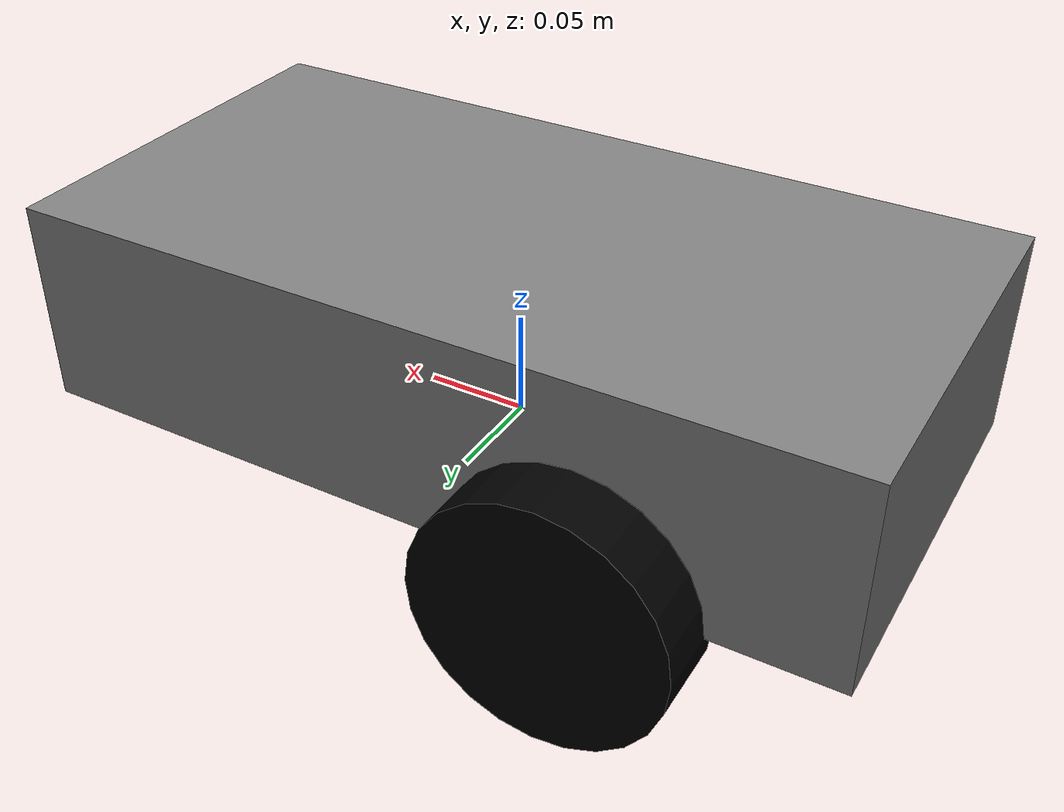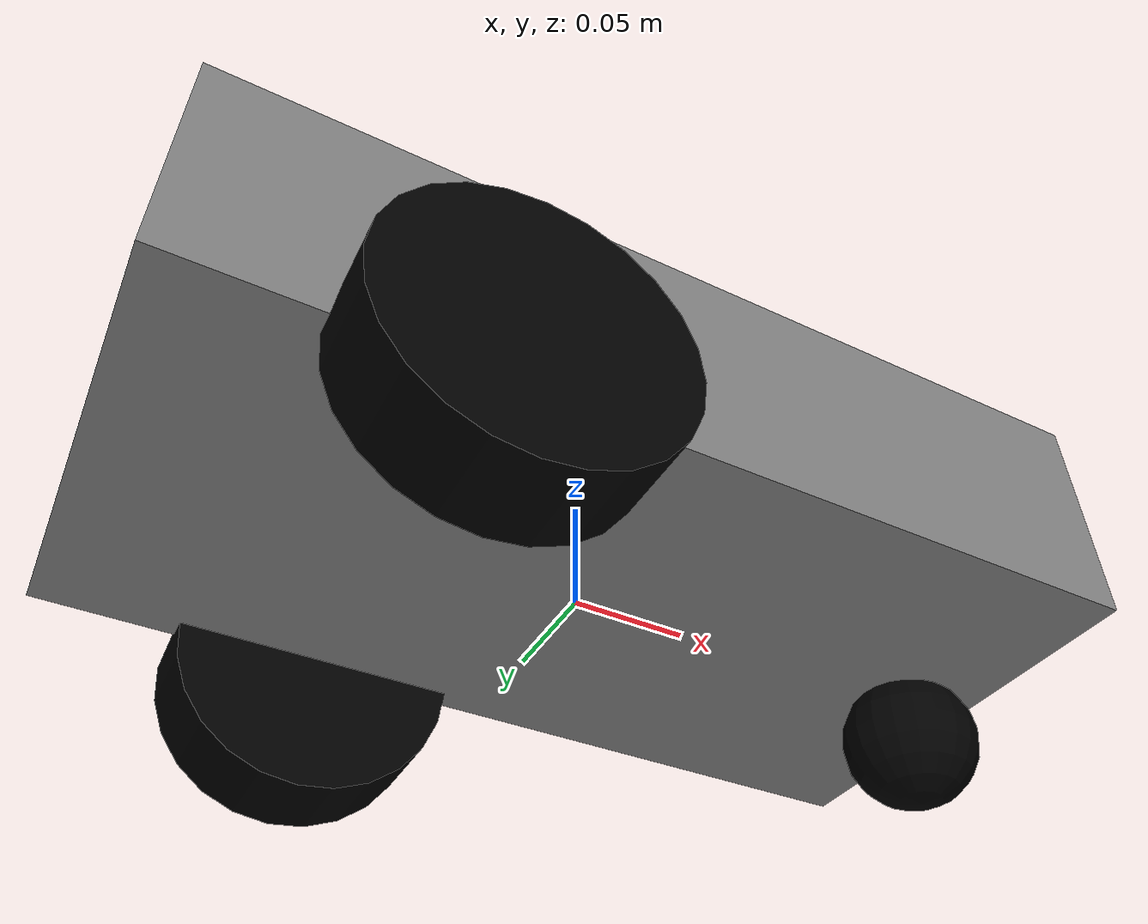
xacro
<?xml version="1.0"?>
<robot name="mobile_base" xmlns:xacro="http://www.ros.org/wiki/xacro">

  <!-- 修复根链接惯性警告 -->
  <link name="world"/>
  <joint name="world_to_base" type="fixed">
    <parent link="world"/>
    <child link="base_link"/>
    <origin xyz="0 0 0"/>
  </joint>

  <material name="gray">
    <color rgba="0.5 0.5 0.5 1"/>
  </material>
  <material name="black">
    <color rgba="0.0 0.0 0.0 1"/>
  </material>

  <link name="base_link">
    <visual>
      <geometry>
        <box size="0.4 0.2 0.1"/>
      </geometry>
      <origin xyz="0 0 0.05"/>
      <material name="gray"/>
    </visual>
    <collision>
      <geometry>
        <box size="0.4 0.2 0.1"/>
      </geometry>
      <origin xyz="0 0 0.05"/>
    </collision>
    <inertial>
      <mass value="2.0"/>
      <inertia ixx="0.01" ixy="0.0" ixz="0.0" iyy="0.02" iyz="0.0" izz="0.02"/>
    </inertial>
  </link>

  <link name="wheel_left_link">
    <visual>
      <geometry>
        <cylinder length="0.04" radius="0.06"/>
      </geometry>
      <origin rpy="1.5708 0 0"/>
      <material name="black"/>
    </visual>
    <collision>
      <geometry>
        <cylinder length="0.04" radius="0.06"/>
      </geometry>
      <origin rpy="1.5708 0 0"/>
    </collision>
    <inertial>
      <mass value="0.2"/>
      <inertia ixx="0.0002" ixy="0.0" ixz="0.0" iyy="0.0001" iyz="0.0" izz="0.0002"/>
    </inertial>
  </link>

  <link name="wheel_right_link">
    <visual>
      <geometry>
        <cylinder length="0.04" radius="0.06"/>
      </geometry>
      <origin rpy="1.5708 0 0"/>
      <material name="black"/>
    </visual>
    <collision>
      <geometry>
        <cylinder length="0.04" radius="0.06"/>
      </geometry>
      <origin rpy="1.5708 0 0"/>
    </collision>
    <inertial>
      <mass value="0.2"/>
      <inertia ixx="0.0002" ixy="0.0" ixz="0.0" iyy="0.0001" iyz="0.0" izz="0.0002"/>
    </inertial>
  </link>

  <link name="caster_link">
    <visual>
      <geometry>
        <sphere radius="0.03"/>
      </geometry>
      <material name="black"/>
    </visual>
    <collision>
      <geometry>
        <sphere radius="0.03"/>
      </geometry>
    </collision>
    <inertial>
      <mass value="0.1"/>
      <inertia ixx="0.00001" ixy="0.0" ixz="0.0" iyy="0.00001" iyz="0.0" izz="0.00001"/>
    </inertial>
  </link>

  <joint name="wheel_left_joint" type="revolute">
    <parent link="base_link"/>
    <child link="wheel_left_link"/>
    <origin xyz="-0.08 -0.11 0"/>
    <axis xyz="0 1 0"/>
    <limit effort="100" lower="-1e16" upper="1e16" velocity="10"/>
  </joint>

  <joint name="wheel_right_joint" type="revolute">
    <parent link="base_link"/>
    <child link="wheel_right_link"/>
    <origin xyz="-0.08 0.11 0"/>
    <axis xyz="0 1 0"/>
    <limit effort="100" lower="-1e16" upper="1e16" velocity="10"/>
  </joint>

  <joint name="base_to_caster" type="fixed">
    <parent link="base_link"/>
    <child link="caster_link"/>
    <origin xyz="0.17 0 -0.02"/>
  </joint>

</robot>
